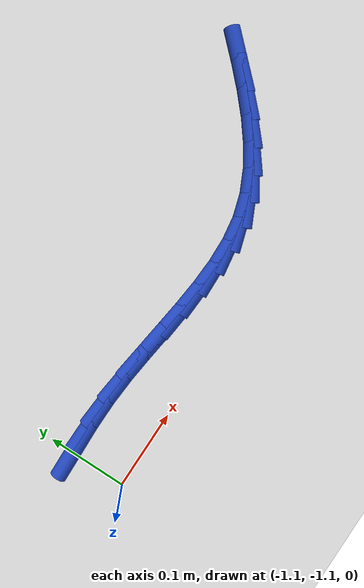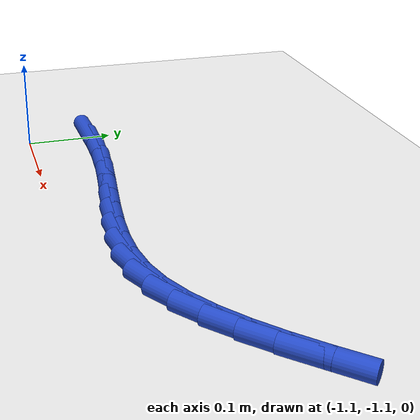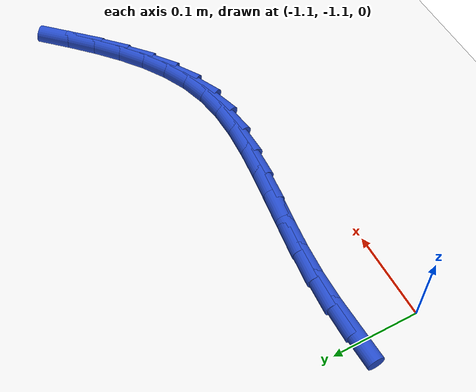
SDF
<sdf version="1.6">
 <world name="default">
  <model name="ground_plane">
   <static>1</static>
   <link name="link">
    <collision name="collision">
     <geometry><plane><normal>0 0 1</normal><size>100 100</size></plane></geometry>
     <surface><friction><ode><mu>100</mu><mu2>50</mu2></ode></friction></surface>
    </collision>
    <visual name="visual">
     <cast_shadows>0</cast_shadows>
     <geometry><plane><normal>0 0 1</normal><size>100 100</size></plane></geometry>
     <material>
      <script><uri>file://media/materials/scripts/gazebo.material</uri><name>Gazebo/WhiteGlow</name></script>
     </material>
    </visual>
   </link>
  </model>
  <model name="line">
   <link name="link_149">
    <pose>-1.0895586543309594 -1.0282791054797866 0.01 0 1.57 0.03080495324323685</pose>
    <collision name="collision">
     <geometry><cylinder><radius>0.01</radius><length>0.08</length></cylinder></geometry>
    </collision>
    <visual name="visual">
     <material>
      <script><name>Gazebo/Blue</name><uri>file://media/materials/scripts/gazebo.material</uri></script>
     </material>
     <geometry><cylinder><radius>0.01</radius><length>0.08</length></cylinder></geometry>
    </visual>
   </link>
   <link name="link_150">
    <pose>-1.0550073026214821 -1.0272144159072447 0.01 0 1.57 -0.013448706324159653</pose>
    <collision name="collision">
     <geometry><cylinder><radius>0.01</radius><length>0.08</length></cylinder></geometry>
    </collision>
    <visual name="visual">
     <material>
      <script><name>Gazebo/Blue</name><uri>file://media/materials/scripts/gazebo.material</uri></script>
     </material>
     <geometry><cylinder><radius>0.01</radius><length>0.08</length></cylinder></geometry>
    </visual>
   </link>
   <link name="link_151">
    <pose>-1.020286225153313 -1.0276813976356827 0.01 0 1.57 -0.06987250494297205</pose>
    <collision name="collision">
     <geometry><cylinder><radius>0.01</radius><length>0.08</length></cylinder></geometry>
    </collision>
    <visual name="visual">
     <material>
      <script><name>Gazebo/Blue</name><uri>file://media/materials/scripts/gazebo.material</uri></script>
     </material>
     <geometry><cylinder><radius>0.01</radius><length>0.08</length></cylinder></geometry>
    </visual>
   </link>
   <link name="link_152">
    <pose>-0.9854825929869886 -1.0301171798521829 0.01 0 1.57 -0.11458572230680207</pose>
    <collision name="collision">
     <geometry><cylinder><radius>0.01</radius><length>0.08</length></cylinder></geometry>
    </collision>
    <visual name="visual">
     <material>
      <script><name>Gazebo/Blue</name><uri>file://media/materials/scripts/gazebo.material</uri></script>
     </material>
     <geometry><cylinder><radius>0.01</radius><length>0.08</length></cylinder></geometry>
    </visual>
   </link>
   <link name="link_153">
    <pose>-0.9507567008386311 -1.0341137782462375 0.01 0 1.57 -0.13577113385567896</pose>
    <collision name="collision">
     <geometry><cylinder><radius>0.01</radius><length>0.08</length></cylinder></geometry>
    </collision>
    <visual name="visual">
     <material>
      <script><name>Gazebo/Blue</name><uri>file://media/materials/scripts/gazebo.material</uri></script>
     </material>
     <geometry><cylinder><radius>0.01</radius><length>0.08</length></cylinder></geometry>
    </visual>
   </link>
   <link name="link_154">
    <pose>-0.9163071938640028 -1.0388199801987894 0.01 0 1.57 -0.1334420613844813</pose>
    <collision name="collision">
     <geometry><cylinder><radius>0.01</radius><length>0.08</length></cylinder></geometry>
    </collision>
    <visual name="visual">
     <material>
      <script><name>Gazebo/Blue</name><uri>file://media/materials/scripts/gazebo.material</uri></script>
     </material>
     <geometry><cylinder><radius>0.01</radius><length>0.08</length></cylinder></geometry>
    </visual>
   </link>
   <link name="link_155">
    <pose>-0.882333055645691 -1.0433806617836368 0.01 0 1.57 -0.10650418131223051</pose>
    <collision name="collision">
     <geometry><cylinder><radius>0.01</radius><length>0.08</length></cylinder></geometry>
    </collision>
    <visual name="visual">
     <material>
      <script><name>Gazebo/Blue</name><uri>file://media/materials/scripts/gazebo.material</uri></script>
     </material>
     <geometry><cylinder><radius>0.01</radius><length>0.08</length></cylinder></geometry>
    </visual>
   </link>
   <link name="link_156">
    <pose>-0.8490332697662821 -1.046940699074576 0.01 0 1.57 -0.05250967683962526</pose>
    <collision name="collision">
     <geometry><cylinder><radius>0.01</radius><length>0.08</length></cylinder></geometry>
    </collision>
    <visual name="visual">
     <material>
      <script><name>Gazebo/Blue</name><uri>file://media/materials/scripts/gazebo.material</uri></script>
     </material>
     <geometry><cylinder><radius>0.01</radius><length>0.08</length></cylinder></geometry>
    </visual>
   </link>
   <link name="link_157">
    <pose>-0.8166068198083628 -1.0486449681454055 0.01 0 1.57 0.032093935407687034</pose>
    <collision name="collision">
     <geometry><cylinder><radius>0.01</radius><length>0.08</length></cylinder></geometry>
    </collision>
    <visual name="visual">
     <material>
      <script><name>Gazebo/Blue</name><uri>file://media/materials/scripts/gazebo.material</uri></script>
     </material>
     <geometry><cylinder><radius>0.01</radius><length>0.08</length></cylinder></geometry>
    </visual>
   </link>
   <link name="link_158">
    <pose>-0.78525268935452 -1.0476383450699225 0.01 0 1.57 0.15084696628653096</pose>
    <collision name="collision">
     <geometry><cylinder><radius>0.01</radius><length>0.08</length></cylinder></geometry>
    </collision>
    <visual name="visual">
     <material>
      <script><name>Gazebo/Blue</name><uri>file://media/materials/scripts/gazebo.material</uri></script>
     </material>
     <geometry><cylinder><radius>0.01</radius><length>0.08</length></cylinder></geometry>
    </visual>
   </link>
   <link name="link_159">
    <pose>-0.7551698619873404 -1.0430657059219246 0.01 0 1.57 0.3014198869263822</pose>
    <collision name="collision">
     <geometry><cylinder><radius>0.01</radius><length>0.08</length></cylinder></geometry>
    </collision>
    <visual name="visual">
     <material>
      <script><name>Gazebo/Blue</name><uri>file://media/materials/scripts/gazebo.material</uri></script>
     </material>
     <geometry><cylinder><radius>0.01</radius><length>0.08</length></cylinder></geometry>
    </visual>
   </link>
   <link name="link_160">
    <pose>-0.7265308513004769 -1.0341620468893562 0.01 0 1.57 0.4485004680019383</pose>
    <collision name="collision">
     <geometry><cylinder><radius>0.01</radius><length>0.08</length></cylinder></geometry>
    </collision>
    <visual name="visual">
     <material>
      <script><name>Gazebo/Blue</name><uri>file://media/materials/scripts/gazebo.material</uri></script>
     </material>
     <geometry><cylinder><radius>0.01</radius><length>0.08</length></cylinder></geometry>
    </visual>
   </link>
   <link name="link_161">
    <pose>-0.6992518079531317 -1.0210351811822733 0.01 0 1.57 0.5698131582372983</pose>
    <collision name="collision">
     <geometry><cylinder><radius>0.01</radius><length>0.08</length></cylinder></geometry>
    </collision>
    <visual name="visual">
     <material>
      <script><name>Gazebo/Blue</name><uri>file://media/materials/scripts/gazebo.material</uri></script>
     </material>
     <geometry><cylinder><radius>0.01</radius><length>0.08</length></cylinder></geometry>
    </visual>
   </link>
   <link name="link_162">
    <pose>-0.6731049989398715 -1.004282790454329 0.01 0 1.57 0.6645056876378349</pose>
    <collision name="collision">
     <geometry><cylinder><radius>0.01</radius><length>0.08</length></cylinder></geometry>
    </collision>
    <visual name="visual">
     <material>
      <script><name>Gazebo/Blue</name><uri>file://media/materials/scripts/gazebo.material</uri></script>
     </material>
     <geometry><cylinder><radius>0.01</radius><length>0.08</length></cylinder></geometry>
    </visual>
   </link>
   <link name="link_163">
    <pose>-0.6478610976394391 -0.9845079820070822 0.01 0 1.57 0.7346296834222725</pose>
    <collision name="collision">
     <geometry><cylinder><radius>0.01</radius><length>0.08</length></cylinder></geometry>
    </collision>
    <visual name="visual">
     <material>
      <script><name>Gazebo/Blue</name><uri>file://media/materials/scripts/gazebo.material</uri></script>
     </material>
     <geometry><cylinder><radius>0.01</radius><length>0.08</length></cylinder></geometry>
    </visual>
   </link>
   <link name="link_164">
    <pose>-0.6232907774305773 -0.9623138631420904 0.01 0 1.57 0.7829936719141393</pose>
    <collision name="collision">
     <geometry><cylinder><radius>0.01</radius><length>0.08</length></cylinder></geometry>
    </collision>
    <visual name="visual">
     <material>
      <script><name>Gazebo/Blue</name><uri>file://media/materials/scripts/gazebo.material</uri></script>
     </material>
     <geometry><cylinder><radius>0.01</radius><length>0.08</length></cylinder></geometry>
    </visual>
   </link>
   <link name="link_165">
    <pose>-0.599164711692029 -0.9383035411609122 0.01 0 1.57 0.8120996975881986</pose>
    <collision name="collision">
     <geometry><cylinder><radius>0.01</radius><length>0.08</length></cylinder></geometry>
    </collision>
    <visual name="visual">
     <material>
      <script><name>Gazebo/Blue</name><uri>file://media/materials/scripts/gazebo.material</uri></script>
     </material>
     <geometry><cylinder><radius>0.01</radius><length>0.08</length></cylinder></geometry>
    </visual>
   </link>
  </model>
 </world>
</sdf>
